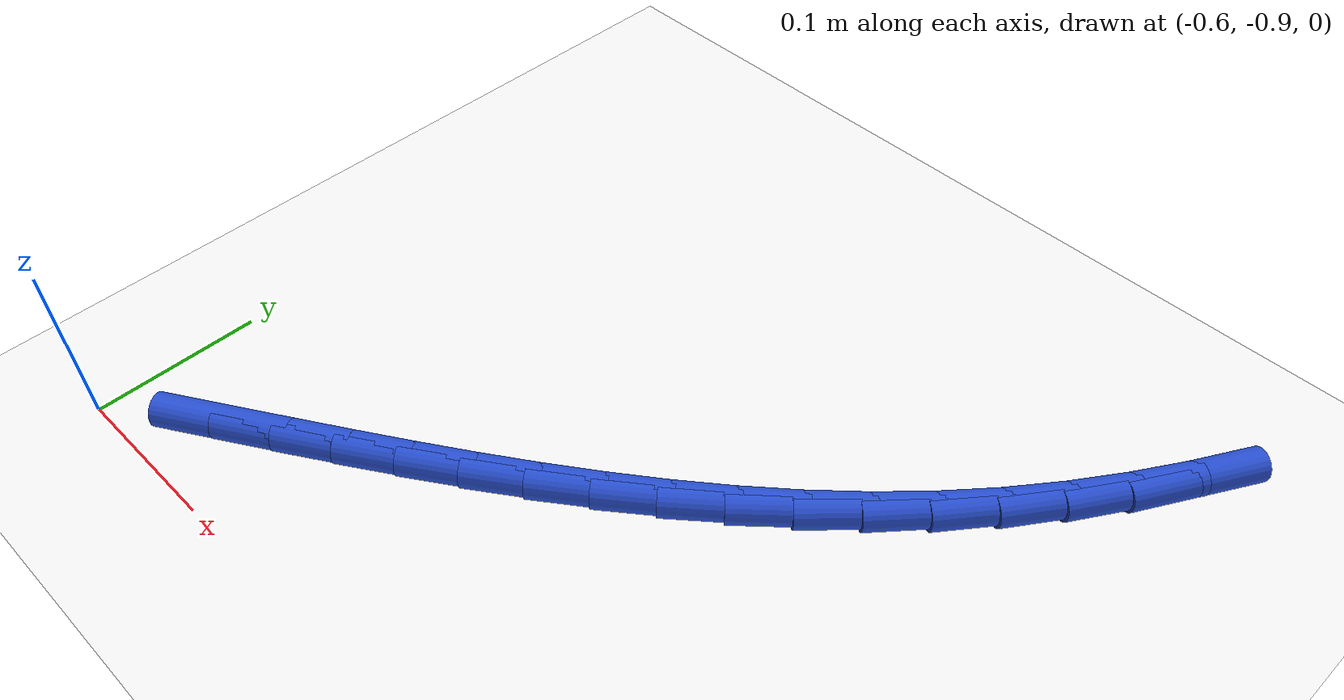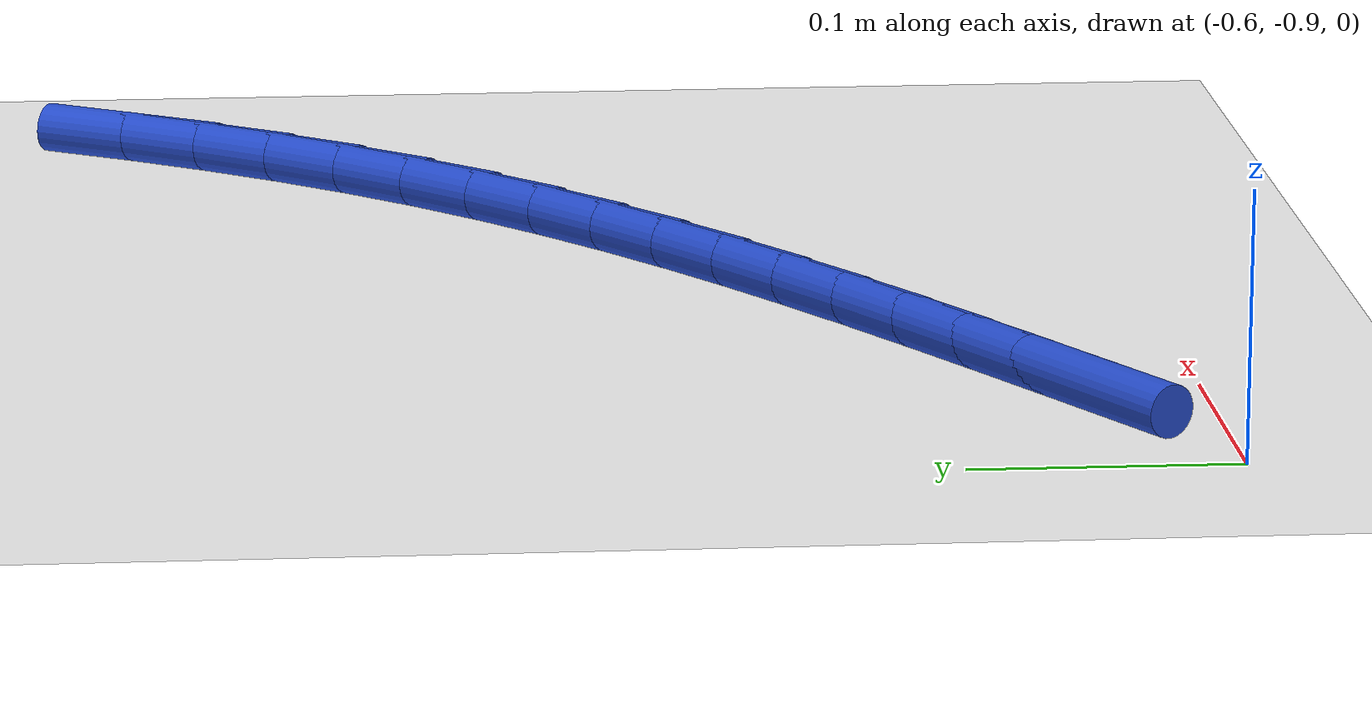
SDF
<sdf version="1.6">
 <world name="default">
  <model name="ground_plane">
   <static>1</static>
   <link name="link">
    <collision name="collision">
     <geometry><plane><normal>0 0 1</normal><size>100 100</size></plane></geometry>
     <surface><friction><ode><mu>100</mu><mu2>50</mu2></ode></friction></surface>
    </collision>
    <visual name="visual">
     <cast_shadows>0</cast_shadows>
     <geometry><plane><normal>0 0 1</normal><size>100 100</size></plane></geometry>
     <material>
      <script><uri>file://media/materials/scripts/gazebo.material</uri><name>Gazebo/WhiteGlow</name></script>
     </material>
    </visual>
   </link>
  </model>
  <model name="line">
   <link name="link_160">
    <pose>-0.5327843992268955 -0.8574739476367059 0.01 0 1.57 0.5496731305192187</pose>
    <collision name="collision">
     <geometry><cylinder><radius>0.01</radius><length>0.08</length></cylinder></geometry>
    </collision>
    <visual name="visual">
     <material>
      <script><name>Gazebo/Blue</name><uri>file://media/materials/scripts/gazebo.material</uri></script>
     </material>
     <geometry><cylinder><radius>0.01</radius><length>0.08</length></cylinder></geometry>
    </visual>
   </link>
   <link name="link_161">
    <pose>-0.5021912652732675 -0.8387308938900748 0.01 0 1.57 0.5530611037360931</pose>
    <collision name="collision">
     <geometry><cylinder><radius>0.01</radius><length>0.08</length></cylinder></geometry>
    </collision>
    <visual name="visual">
     <material>
      <script><name>Gazebo/Blue</name><uri>file://media/materials/scripts/gazebo.material</uri></script>
     </material>
     <geometry><cylinder><radius>0.01</radius><length>0.08</length></cylinder></geometry>
    </visual>
   </link>
   <link name="link_162">
    <pose>-0.4716424723724757 -0.8198723629878862 0.01 0 1.57 0.5612505647326301</pose>
    <collision name="collision">
     <geometry><cylinder><radius>0.01</radius><length>0.08</length></cylinder></geometry>
    </collision>
    <visual name="visual">
     <material>
      <script><name>Gazebo/Blue</name><uri>file://media/materials/scripts/gazebo.material</uri></script>
     </material>
     <geometry><cylinder><radius>0.01</radius><length>0.08</length></cylinder></geometry>
    </visual>
   </link>
   <link name="link_163">
    <pose>-0.441269236307396 -0.8007769214247217 0.01 0 1.57 0.5742817436872801</pose>
    <collision name="collision">
     <geometry><cylinder><radius>0.01</radius><length>0.08</length></cylinder></geometry>
    </collision>
    <visual name="visual">
     <material>
      <script><name>Gazebo/Blue</name><uri>file://media/materials/scripts/gazebo.material</uri></script>
     </material>
     <geometry><cylinder><radius>0.01</radius><length>0.08</length></cylinder></geometry>
    </visual>
   </link>
   <link name="link_164">
    <pose>-0.41120277286090406 -0.7813231356951617 0.01 0 1.57 0.5922257189219686</pose>
    <collision name="collision">
     <geometry><cylinder><radius>0.01</radius><length>0.08</length></cylinder></geometry>
    </collision>
    <visual name="visual">
     <material>
      <script><name>Gazebo/Blue</name><uri>file://media/materials/scripts/gazebo.material</uri></script>
     </material>
     <geometry><cylinder><radius>0.01</radius><length>0.08</length></cylinder></geometry>
    </visual>
   </link>
   <link name="link_165">
    <pose>-0.38157429781587615 -0.7613895722937873 0.01 0 1.57 0.6151760592946396</pose>
    <collision name="collision">
     <geometry><cylinder><radius>0.01</radius><length>0.08</length></cylinder></geometry>
    </collision>
    <visual name="visual">
     <material>
      <script><name>Gazebo/Blue</name><uri>file://media/materials/scripts/gazebo.material</uri></script>
     </material>
     <geometry><cylinder><radius>0.01</radius><length>0.08</length></cylinder></geometry>
    </visual>
   </link>
   <link name="link_166">
    <pose>-0.35251502695518855 -0.7408547977151798 0.01 0 1.57 0.6432365850479643</pose>
    <collision name="collision">
     <geometry><cylinder><radius>0.01</radius><length>0.08</length></cylinder></geometry>
    </collision>
    <visual name="visual">
     <material>
      <script><name>Gazebo/Blue</name><uri>file://media/materials/scripts/gazebo.material</uri></script>
     </material>
     <geometry><cylinder><radius>0.01</radius><length>0.08</length></cylinder></geometry>
    </visual>
   </link>
   <link name="link_167">
    <pose>-0.3241561760617161 -0.7195973784539192 0.01 0 1.57 0.6765044469897784</pose>
    <collision name="collision">
     <geometry><cylinder><radius>0.01</radius><length>0.08</length></cylinder></geometry>
    </collision>
    <visual name="visual">
     <material>
      <script><name>Gazebo/Blue</name><uri>file://media/materials/scripts/gazebo.material</uri></script>
     </material>
     <geometry><cylinder><radius>0.01</radius><length>0.08</length></cylinder></geometry>
    </visual>
   </link>
   <link name="link_168">
    <pose>-0.29662896091833524 -0.6974958810045869 0.01 0 1.57 0.7150478445338929</pose>
    <collision name="collision">
     <geometry><cylinder><radius>0.01</radius><length>0.08</length></cylinder></geometry>
    </collision>
    <visual name="visual">
     <material>
      <script><name>Gazebo/Blue</name><uri>file://media/materials/scripts/gazebo.material</uri></script>
     </material>
     <geometry><cylinder><radius>0.01</radius><length>0.08</length></cylinder></geometry>
    </visual>
   </link>
   <link name="link_169">
    <pose>-0.2700645973079221 -0.6744288718617639 0.01 0 1.57 0.7588781994013251</pose>
    <collision name="collision">
     <geometry><cylinder><radius>0.01</radius><length>0.08</length></cylinder></geometry>
    </collision>
    <visual name="visual">
     <material>
      <script><name>Gazebo/Blue</name><uri>file://media/materials/scripts/gazebo.material</uri></script>
     </material>
     <geometry><cylinder><radius>0.01</radius><length>0.08</length></cylinder></geometry>
    </visual>
   </link>
   <link name="link_170">
    <pose>-0.24459430101335242 -0.6502749175200311 0.01 0 1.57 0.8079176298542617</pose>
    <collision name="collision">
     <geometry><cylinder><radius>0.01</radius><length>0.08</length></cylinder></geometry>
    </collision>
    <visual name="visual">
     <material>
      <script><name>Gazebo/Blue</name><uri>file://media/materials/scripts/gazebo.material</uri></script>
     </material>
     <geometry><cylinder><radius>0.01</radius><length>0.08</length></cylinder></geometry>
    </visual>
   </link>
   <link name="link_171">
    <pose>-0.22034928781750232 -0.6249125844739691 0.01 0 1.57 0.8616862973007242</pose>
    <collision name="collision">
     <geometry><cylinder><radius>0.01</radius><length>0.08</length></cylinder></geometry>
    </collision>
    <visual name="visual">
     <material>
      <script><name>Gazebo/Blue</name><uri>file://media/materials/scripts/gazebo.material</uri></script>
     </material>
     <geometry><cylinder><radius>0.01</radius><length>0.08</length></cylinder></geometry>
    </visual>
   </link>
   <link name="link_172">
    <pose>-0.19745529617080418 -0.598229062434044 0.01 0 1.57 0.9156667156596745</pose>
    <collision name="collision">
     <geometry><cylinder><radius>0.01</radius><length>0.08</length></cylinder></geometry>
    </collision>
    <visual name="visual">
     <material>
      <script><name>Gazebo/Blue</name><uri>file://media/materials/scripts/gazebo.material</uri></script>
     </material>
     <geometry><cylinder><radius>0.01</radius><length>0.08</length></cylinder></geometry>
    </visual>
   </link>
   <link name="link_173">
    <pose>-0.17595374682591894 -0.5702442863326298 0.01 0 1.57 0.966533196193152</pose>
    <collision name="collision">
     <geometry><cylinder><radius>0.01</radius><length>0.08</length></cylinder></geometry>
    </collision>
    <visual name="visual">
     <material>
      <script><name>Gazebo/Blue</name><uri>file://media/materials/scripts/gazebo.material</uri></script>
     </material>
     <geometry><cylinder><radius>0.01</radius><length>0.08</length></cylinder></geometry>
    </visual>
   </link>
   <link name="link_174">
    <pose>-0.15581992370325667 -0.5410823133528982 0.01 0 1.57 1.0143447265233565</pose>
    <collision name="collision">
     <geometry><cylinder><radius>0.01</radius><length>0.08</length></cylinder></geometry>
    </collision>
    <visual name="visual">
     <material>
      <script><name>Gazebo/Blue</name><uri>file://media/materials/scripts/gazebo.material</uri></script>
     </material>
     <geometry><cylinder><radius>0.01</radius><length>0.08</length></cylinder></geometry>
    </visual>
   </link>
   <link name="link_175">
    <pose>-0.13702733692949318 -0.5108699932429154 0.01 0 1.57 1.0592870124916585</pose>
    <collision name="collision">
     <geometry><cylinder><radius>0.01</radius><length>0.08</length></cylinder></geometry>
    </collision>
    <visual name="visual">
     <material>
      <script><name>Gazebo/Blue</name><uri>file://media/materials/scripts/gazebo.material</uri></script>
     </material>
     <geometry><cylinder><radius>0.01</radius><length>0.08</length></cylinder></geometry>
    </visual>
   </link>
  </model>
 </world>
</sdf>
